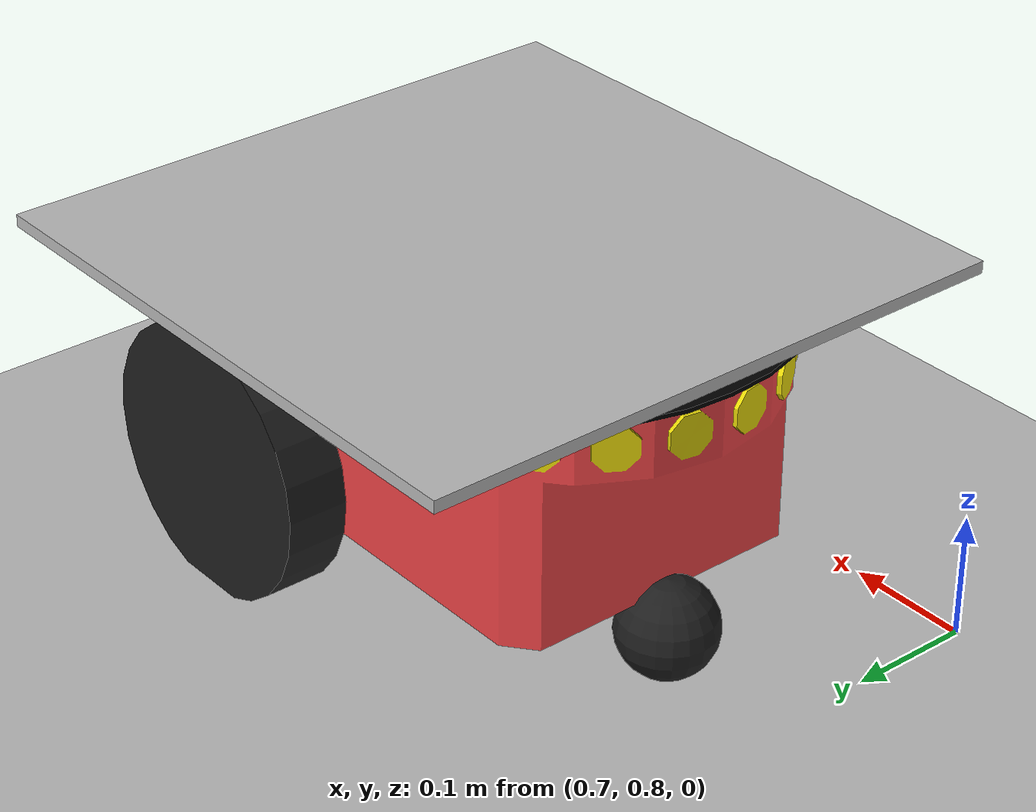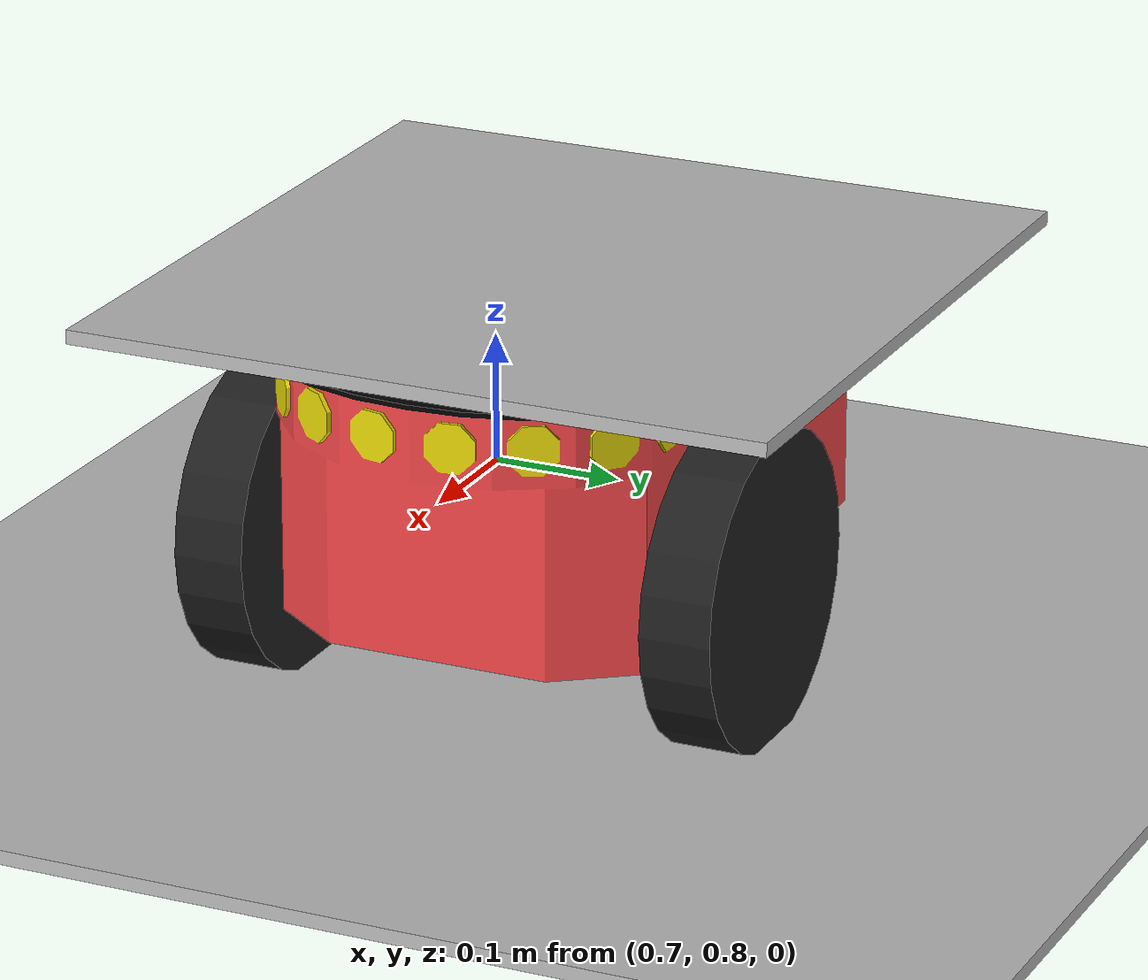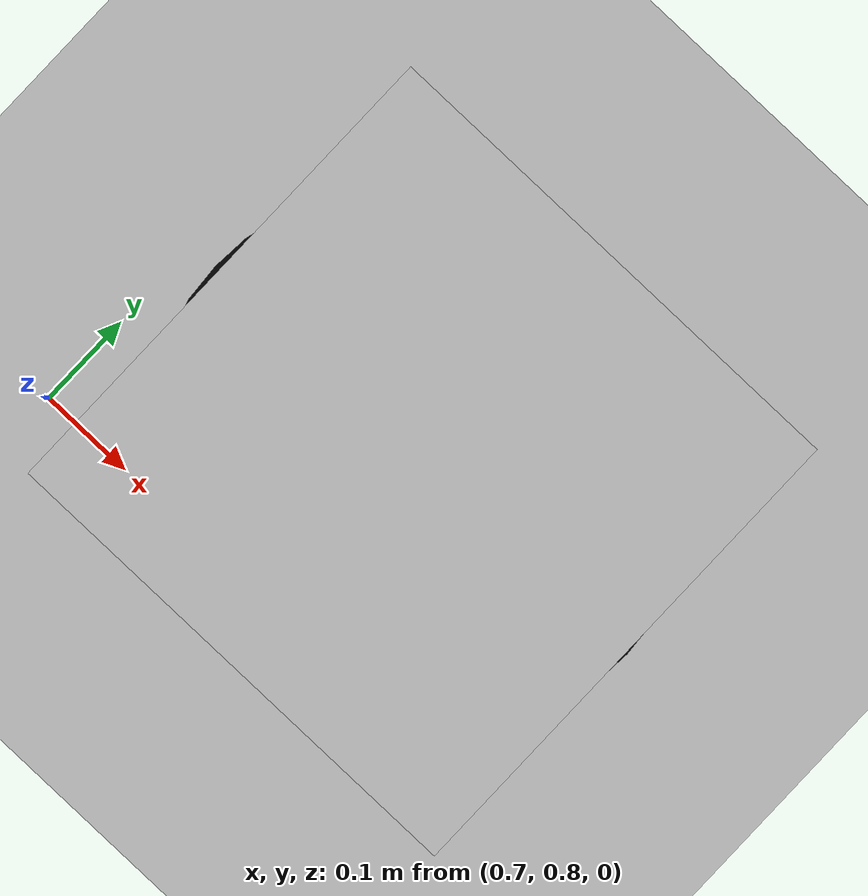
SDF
<?xml version="1.0" ?>
<sdf version="1.5">
  <world name="default">
    <!-- 动力学库 -->
    <physics type='ode'>
      <gravity>0 0 -9.8066</gravity>
      <ode>
        <solver>
          <type>quick</type>
          <iters>10</iters>
          <sor>1.3</sor>
          <use_dynamic_moi_rescaling>0</use_dynamic_moi_rescaling>
        </solver>
        <constraints>
          <cfm>0.00001</cfm>
          <erp>0.2</erp>
          <contact_max_correcting_vel>1000</contact_max_correcting_vel>
          <contact_surface_layer>0.01</contact_surface_layer>
        </constraints>
      </ode>
      <max_step_size>0.004</max_step_size>
      <real_time_factor>1.0</real_time_factor>
      <real_time_update_rate>250</real_time_update_rate>
      <magnetic_field>6.0e-6 2.3e-5 -4.2e-5</magnetic_field>
    </physics>

    <!-- 初始视角 -->
    <gui fullscreen='0'>
      <camera name='user_camera'>
        <pose>-13.0 0.0 12.0 0 0.75 0.0</pose>
        <view_controller>orbit</view_controller>
      </camera>
    </gui>

    <!-- 光源 -->
    <light type="directional" name="sun">
      <cast_shadows>false</cast_shadows>
      <pose>0 0 100 0 0 0</pose>
      <diffuse>0.8 0.8 0.8 1</diffuse>
      <specular>0.9 0.9 0.9 1</specular>
      <attenuation>
        <range>1000</range>
        <constant>0.9</constant>
        <linear>0.01</linear>
        <quadratic>0.001</quadratic>
      </attenuation>
      <direction>0.2 0.2 -0.9</direction>
    </light>

    <scene>
      <shadows>0</shadows>
    </scene>

    <!-- A ground plane -->
    <include>
      <uri>model://ground_plane</uri>
    </include>

    <model name='target'>  <!--模型名字-->
    	<pose frame=''>1 1 0  0 0 0</pose>  <!--模型相对于世界坐标系所放位置-->
      <include>
      <uri>model://tag_car</uri>
    </include>
    </model>

    <!-- 装饰 -->
    <model name='texture'>
      <static>true</static>
      <link name="sunray">
        <pose frame=''> 0.0 0.0 0.0 0.0 0.0 0.0</pose>
        <visual name="visual">
            <cast_shadows>false</cast_shadows>
            <geometry>
              <box>
                <size>20.0 20.0 0.01</size>
              </box>
            </geometry>
            <material>
              <script>
                <uri>model://texture.material</uri>
                <name>sunray_world_1</name>
              </script>
            </material>
        </visual>
      </link>
    </model>

  </world>
</sdf>

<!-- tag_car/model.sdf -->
<sdf version="1.5">
  <model name="pioneer2dx">
    <link name="chassis">
      <pose>0 0 0.16 0 0 0</pose>
      <inertial>
        <mass>5.67</mass>
        <inertia>
          <ixx>0.07</ixx>
          <iyy>0.08</iyy>
          <izz>0.10</izz>
          <ixy>0</ixy>
          <ixz>0</ixz>
          <iyz>0</iyz>
        </inertia>
      </inertial>
      <collision name="collision">
        <geometry>
          <box>
            <size>0.445 0.277 0.17</size>
          </box>
        </geometry>
      </collision>
      <collision name="castor_collision">
        <pose>-0.200 0 -0.12 0 0 0</pose>
        <geometry>
          <sphere>
            <radius>0.04</radius>
          </sphere>
        </geometry>
        <surface>
          <friction>
            <ode>
              <mu>0</mu>
              <mu2>0</mu2>
              <slip1>1.0</slip1>
              <slip2>1.0</slip2>
            </ode>
          </friction>
        </surface>
      </collision>
      <visual name="visual">
        <pose>0 0 0.04 0 0 0</pose>
        <geometry>
          <mesh>
            <uri>model://pioneer2dx/meshes/chassis.dae</uri>
          </mesh>
        </geometry>
      </visual>
      <visual name="castor_visual">
        <pose>-0.200 0 -0.12 0 0 0</pose>
        <geometry>
          <sphere>
            <radius>0.04</radius>
          </sphere>
        </geometry>
        <material>
          <script>
            <uri>file://media/materials/scripts/gazebo.material</uri>
            <name>Gazebo/FlatBlack</name>
          </script>
        </material>
      </visual>
    </link>
    <link name="right_wheel">
      <pose>0.1 -.17 0.11 0 1.5707 1.5707</pose>
      <inertial>
        <mass>1.5</mass>
        <inertia>
          <ixx>0.0051</ixx>
          <iyy>0.0051</iyy>
          <izz>0.0090</izz>
          <ixy>0</ixy>
          <ixz>0</ixz>
          <iyz>0</iyz>
        </inertia>
      </inertial>
      <collision name="collision">
        <geometry>
          <cylinder>
            <radius>0.11</radius>
            <length>0.05</length>
          </cylinder>
        </geometry>
        <surface>
          <friction>
            <ode>
              <mu>100000.0</mu>
              <mu2>100000.0</mu2>
              <slip1>0.0</slip1>
              <slip2>0.0</slip2>
            </ode>
          </friction>
        </surface>
      </collision>
      <visual name="visual">
        <geometry>
          <cylinder>
            <radius>0.11</radius>
            <length>0.05</length>
          </cylinder>
        </geometry>
        <material>
          <script>
            <uri>file://media/materials/scripts/gazebo.material</uri>
            <name>Gazebo/FlatBlack</name>
          </script>
        </material>
      </visual>
    </link>
    <link name="left_wheel">
      <pose>0.1 .17 0.11 0 1.5707 1.5707</pose>
      <inertial>
        <mass>1.5</mass>
        <inertia>
          <ixx>0.0051</ixx>
          <iyy>0.0051</iyy>
          <izz>0.0090</izz>
          <ixy>0</ixy>
          <ixz>0</ixz>
          <iyz>0</iyz>
        </inertia>
      </inertial>
      <collision name="collision">
        <geometry>
          <cylinder>
            <radius>0.11</radius>
            <length>0.05</length>
          </cylinder>
        </geometry>
        <surface>
          <friction>
            <ode>
              <mu>100000.0</mu>
              <mu2>100000.0</mu2>
              <slip1>0.0</slip1>
              <slip2>0.0</slip2>
            </ode>
          </friction>
        </surface>
      </collision>
      <visual name="visual">
        <geometry>
          <cylinder>
            <radius>0.11</radius>
            <length>0.05</length>
          </cylinder>
        </geometry>
        <material>
          <script>
            <uri>file://media/materials/scripts/gazebo.material</uri>
            <name>Gazebo/FlatBlack</name>
          </script>
        </material>
      </visual>
    </link>
    <link name='tag0'>
        <pose frame=''> 0.0 0.0 0.27 0.0 0.0 0.0</pose>
        <visual name="visual">
            <cast_shadows>false</cast_shadows>
            <geometry>
              <box>
                <size>0.5 0.5 0.01</size>
              </box>
            </geometry>
            <material>
              <script>
                <uri>model://texture.material</uri>
                <name>tag_0</name>
              </script>
            </material>
        </visual>
      </link>
      <joint name='tag0_link' type='fixed'>
        <pose>0 0 0 0 -0 0</pose>
        <child>tag0</child>
        <parent>chassis</parent>
        <axis>
          <xyz expressed_in='__model__'>0 1 0</xyz>
          <limit>
            <lower>-1e+16</lower>
            <upper>1e+16</upper>
          </limit>
          <dynamics>
            <spring_reference>0</spring_reference>
            <spring_stiffness>0</spring_stiffness>
          </dynamics>
        </axis>
    </joint>
    <joint type="revolute" name="left_wheel_hinge">
      <pose>0 0 -0.03 0 0 0</pose>
      <child>left_wheel</child>
      <parent>chassis</parent>
      <axis>
        <xyz>0 1 0</xyz>
        <use_parent_model_frame>true</use_parent_model_frame>
      </axis>
    </joint>
    <joint type="revolute" name="right_wheel_hinge">
      <pose>0 0 0.03 0 0 0</pose>
      <child>right_wheel</child>
      <parent>chassis</parent>
      <axis>
        <xyz>0 1 0</xyz>
        <use_parent_model_frame>true</use_parent_model_frame>
      </axis>
    </joint>
    <plugin name="differential_drive_controller" filename="libgazebo_ros_diff_drive.so">
        <legacyMode>false</legacyMode>
        <alwaysOn>true</alwaysOn>
      <updateRate>100.0</updateRate>
      <leftJoint>left_wheel_hinge</leftJoint>
      <rightJoint>right_wheel_hinge</rightJoint>
      <wheelSeparation>0.32</wheelSeparation>
      <wheelDiameter>0.18</wheelDiameter>
      <wheelTorque>5</wheelTorque>
        <wheelAcceleration>0</wheelAcceleration>
        <robotNamespace>/</robotNamespace>
      <commandTopic>cmd_vel</commandTopic>
      <odometryTopic>tag_odom</odometryTopic>
        <odometrySource>world</odometrySource><!--Other option is World or ENCODER-->
      <odometryFrame>odom</odometryFrame>
        <robotBaseFrame>base_link</robotBaseFrame>
        <publishTf>1</publishTf>
        <publishWheelTF>false</publishWheelTF>
        <publishOdomTF>true</publishOdomTF>
        <publishWheelJointState>false</publishWheelJointState>
        <rosDebugLevel>Warn</rosDebugLevel>
    </plugin>
  </model>
</sdf>
